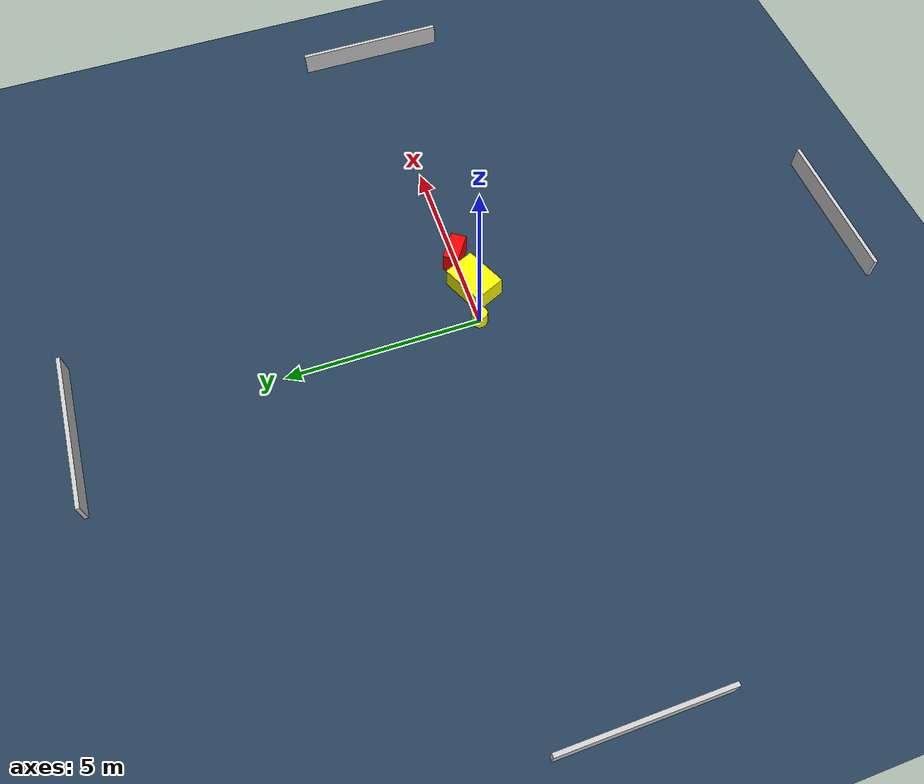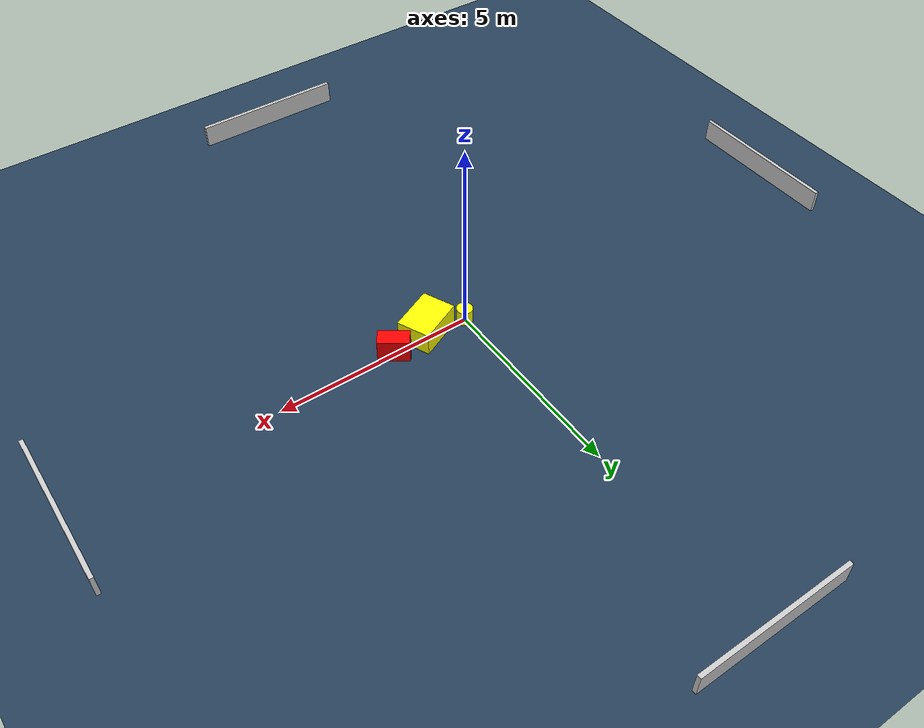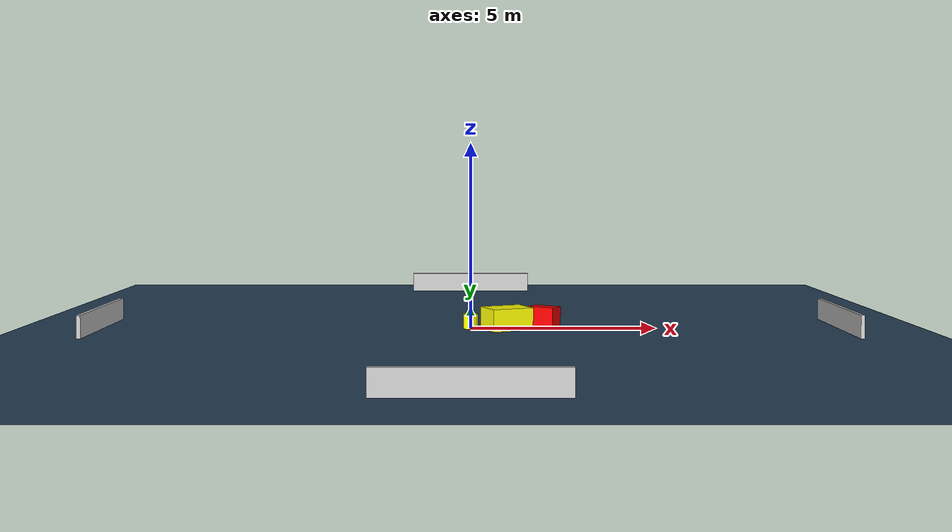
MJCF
<?xml version="1.0" ?>
<mujoco model="generated_environment">
  <option timestep="0.01" integrator="RK4" cone="elliptic"/>
  <default>
    <geom density="1"/>
  </default>
  <asset>
    <texture builtin="gradient" height="3072" name="skybox" rgb1="0.3 0.5 0.7" rgb2="0 0 0" type="skybox" width="512"/>
    <texture builtin="checker" height="300" name="groundplane" rgb1="0.2 0.3 0.4" rgb2="0.1 0.2 0.3" type="2d" width="300"/>
    <material name="groundplane" reflectance="0.2" texrepeat="5 5" texture="groundplane"/>
  </asset>
  <worldbody>
    <light dir="0 0 -1" directional="true" pos="0 0 1.5"/>
    <geom condim="3" friction="0.5 0.005 0.001" material="groundplane" name="floor" pos="0 0 0" size="0 0 0.05" type="plane"/>
    <body name="walls">
      <geom name="wall_1" condim="4" pos="-10.0 0.0 0.3" rgba="0.800000011920929 0.800000011920929 0.800000011920929 1.0" size="0.05 2.0 0.3" type="box"/>
      <geom name="wall_2" condim="4" pos="10.0 0.0 0.3" rgba="0.800000011920929 0.800000011920929 0.800000011920929 1.0" size="0.05 2.0 0.3" type="box"/>
      <geom name="wall_3" condim="4" pos="0.0 -10.0 0.3" rgba="0.800000011920929 0.800000011920929 0.800000011920929 1.0" size="2.0 0.05 0.3" type="box"/>
      <geom name="wall_4" condim="4" pos="0.0 10.0 0.3" rgba="0.800000011920929 0.800000011920929 0.800000011920929 1.0" size="2.0 0.05 0.3" type="box"/>
    </body>
    <body name="robot">
      <joint name="joint_x" type="slide" pos="0 0 0" axis="1 0 0"/>
      <joint name="joint_y" type="slide" pos="0 0 0" axis="0 1 0"/>
      <geom name="robot" type="cylinder" pos="0.0 0.0 0.2" size="0.2 0.2 0.0" mass="5.0" friction="1.0 0.005 0.0001" condim="4" rgba="1.0 1.0 0.0 1.0"/>
    </body>
    <body name="obstacle_1_movable">
      <geom name="obstacle_1_movable" condim="4" pos="0.9722262087382229 -0.18988647798804403 0.3" euler="0 0 24.128390256105227" friction="0.0 0.005 0.001" rgba="1.0 1.0 0.0 1.0" size="0.5804499156756322 0.4231769510015858 0.3" type="box" mass="0.1"/>
      <joint type="free"/>
    </body>
    <body name="obstacle_2_static">
      <geom name="obstacle_2_static" condim="4" pos="1.993098523222619 -0.012324283684374195 0.3" euler="0 0 145.2831632414908" friction="0.0 0.005 0.001" rgba="1.0 0.0 0.0 1.0" size="0.3845903631618749 0.2046890853975747 0.3" type="box"/>
    </body>
  </worldbody>
  <actuator>
    <motor name="actuator_x" joint="joint_x" gear="1" ctrlrange="-1 1"/>
    <motor name="actuator_y" joint="joint_y" gear="1" ctrlrange="-1 1"/>
  </actuator>
</mujoco>
